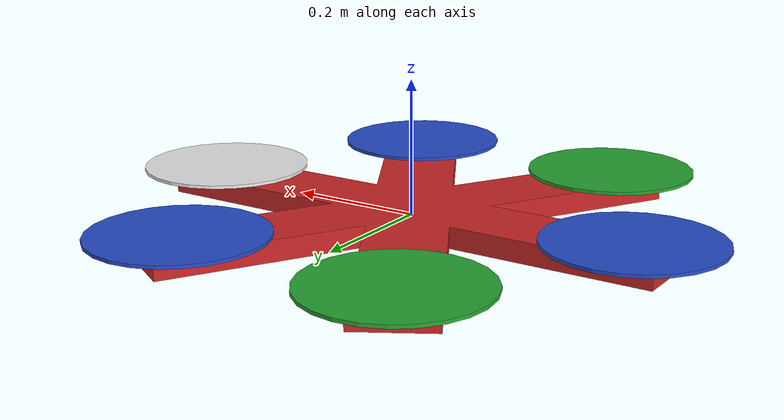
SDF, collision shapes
<sdf version='1.6'>
  <model name='hex_fl_rr'>
    <link name='base_link'>
      <pose frame=''>0 0 0 0 -0 0</pose>
      <inertial>
        <pose frame=''>0 0 0 0 -0 0</pose>
        <mass>2.0</mass>
        <inertia>
          <ixx>0.0818</ixx>
          <ixy>0</ixy>
          <ixz>0</ixz>
          <iyy>0.0818</iyy>
          <iyz>0</iyz>
          <izz>0.1633</izz>
        </inertia>
      </inertial>
      <collision name='base_link_inertia_collision'>
        <pose frame=''>0 0 0.015 -1.570795 -0 1.570795</pose>
        <geometry>
          <mesh>
            <scale>0.001055 0.001055 0.001055</scale>
            <uri>model://hex_fl_rr/meshes/hex_collision.stl</uri>
          </mesh>
        </geometry>
        <surface>
          <contact>
            <ode>
              <min_depth>0.001</min_depth>
              <max_vel>0</max_vel>
            </ode>
          </contact>
          <friction>
            <ode/>
          </friction>
        </surface>
      </collision>
      <visual name='base_link_inertia_visual'>
        <pose frame=''>0 0 0 -1.570795 -0 1.570795</pose>
        <geometry>
          <mesh>
            <scale>0.001055 0.001055 0.001055</scale>
            <uri>model://hex_fl_rr/meshes/hex_frame.stl</uri>
          </mesh>
        </geometry>
        <material>
          <script>
            <name>Gazebo/Red</name>
            <uri>file://media/materials/scripts/gazebo.material</uri>
          </script>
        </material>
      </visual>
      <gravity>1</gravity>
      <velocity_decay/>
    </link>
    <link name='/imu_link'>
      <pose frame=''>0 0 0 0 -0 0</pose>
      <inertial>
        <pose frame=''>0 0 0 0 -0 0</pose>
        <mass>0.015</mass>
        <inertia>
          <ixx>1e-05</ixx>
          <ixy>0</ixy>
          <ixz>0</ixz>
          <iyy>1e-05</iyy>
          <iyz>0</iyz>
          <izz>1e-05</izz>
        </inertia>
      </inertial>
    </link>
    <joint name='/imu_joint' type='revolute'>
      <child>/imu_link</child>
      <parent>base_link</parent>
      <axis>
        <xyz>1 0 0</xyz>
        <limit>
          <lower>0</lower>
          <upper>0</upper>
          <effort>0</effort>
          <velocity>0</velocity>
        </limit>
        <dynamics>
          <spring_reference>0</spring_reference>
          <spring_stiffness>0</spring_stiffness>
        </dynamics>
        <use_parent_model_frame>1</use_parent_model_frame>
      </axis>
    </joint>

    <link name='rotor_3'>
      <pose frame=''>0.175 -0.30311 0.022 0 -0 0</pose>
      <inertial>
        <pose frame=''>0 0 0 0 -0 0</pose>
        <mass>0.005</mass>
        <inertia>
          <ixx>9.75e-07</ixx>
          <ixy>0</ixy>
          <ixz>0</ixz>
          <iyy>0.000273104</iyy>
          <iyz>0</iyz>
          <izz>0.000274004</izz>
        </inertia>
      </inertial>
      <collision name='rotor_3_collision'>
        <pose frame=''>0 0 0 0 -0 0</pose>
        <geometry>
          <cylinder>
            <length>0.005</length>
            <radius>0.128</radius>
          </cylinder>
        </geometry>
        <surface>
          <contact>
            <ode/>
          </contact>
          <friction>
            <ode/>
          </friction>
        </surface>
      </collision>
      <visual name='rotor_3_visual'>
        <pose frame=''>0 0 0 0 -0 0</pose>
        <geometry>
          <mesh>
            <scale>1 1 1</scale>
            <uri>model://rotors_description/meshes/iris_prop_ccw.dae</uri>
          </mesh>
        </geometry>
        <material>
          <script>
            <name>Gazebo/Blue</name>
            <uri>file://media/materials/scripts/gazebo.material</uri>
          </script>
        </material>
      </visual>
      <gravity>1</gravity>
      <velocity_decay/>
    </link>
    <joint name='rotor_3_joint' type='revolute'>
      <child>rotor_3</child>
      <parent>base_link</parent>
      <axis>
        <xyz>0 0 1</xyz>
        <limit>
          <lower>-1e+16</lower>
          <upper>1e+16</upper>
        </limit>
        <dynamics>
          <spring_reference>0</spring_reference>
          <spring_stiffness>0</spring_stiffness>
        </dynamics>
        <use_parent_model_frame>1</use_parent_model_frame>
      </axis>
    </joint>
    <link name='rotor_4'>
      <pose frame=''>0.175 0.30311 0.022 0 -0 0</pose>
      <inertial>
        <pose frame=''>0 0 0 0 -0 0</pose>
        <mass>0.005</mass>
        <inertia>
          <ixx>9.75e-07</ixx>
          <ixy>0</ixy>
          <ixz>0</ixz>
          <iyy>0.000273104</iyy>
          <iyz>0</iyz>
          <izz>0.000274004</izz>
        </inertia>
      </inertial>
      <collision name='rotor_4_collision'>
        <pose frame=''>0 0 0 0 -0 0</pose>
        <geometry>
          <cylinder>
            <length>0.005</length>
            <radius>0.128</radius>
          </cylinder>
        </geometry>
        <surface>
          <contact>
            <ode/>
          </contact>
          <friction>
            <ode/>
          </friction>
        </surface>
      </collision>
      <visual name='rotor_4_visual'>
        <pose frame=''>0 0 0 0 -0 0</pose>
        <geometry>
          <mesh>
            <scale>1 1 1</scale>
            <uri>model://rotors_description/meshes/iris_prop_ccw.dae</uri>
          </mesh>
        </geometry>
        <material>
          <script>
            <name>Gazebo/Blue</name>
            <uri>file://media/materials/scripts/gazebo.material</uri>
          </script>
        </material>
      </visual>
      <gravity>1</gravity>
      <velocity_decay/>
    </link>
    <joint name='rotor_4_joint' type='revolute'>
      <child>rotor_4</child>
      <parent>base_link</parent>
      <axis>
        <xyz>0 0 1</xyz>
        <limit>
          <lower>-1e+16</lower>
          <upper>1e+16</upper>
        </limit>
        <dynamics>
          <spring_reference>0</spring_reference>
          <spring_stiffness>0</spring_stiffness>
        </dynamics>
        <use_parent_model_frame>1</use_parent_model_frame>
      </axis>
    </joint>
    <link name='rotor_1'>
      <pose frame=''>-0.35 0 0.022 0 -0 0</pose>
      <inertial>
        <pose frame=''>0 0 0 0 -0 0</pose>
        <mass>0.005</mass>
        <inertia>
          <ixx>9.75e-07</ixx>
          <ixy>0</ixy>
          <ixz>0</ixz>
          <iyy>0.000273104</iyy>
          <iyz>0</iyz>
          <izz>0.000274004</izz>
        </inertia>
      </inertial>
      <collision name='rotor_1_collision'>
        <pose frame=''>0 0 0 0 -0 0</pose>
        <geometry>
          <cylinder>
            <length>0.005</length>
            <radius>0.128</radius>
          </cylinder>
        </geometry>
        <surface>
          <contact>
            <ode/>
          </contact>
          <friction>
            <ode/>
          </friction>
        </surface>
      </collision>
      <visual name='rotor_1_visual'>
        <pose frame=''>0 0 0 0 -0 0</pose>
        <geometry>
          <mesh>
            <scale>1 1 1</scale>
            <uri>model://rotors_description/meshes/iris_prop_ccw.dae</uri>
          </mesh>
        </geometry>
        <material>
          <script>
            <name>Gazebo/Blue</name>
            <uri>file://media/materials/scripts/gazebo.material</uri>
          </script>
        </material>
      </visual>
      <gravity>1</gravity>
      <velocity_decay/>
    </link>
    <joint name='rotor_1_joint' type='revolute'>
      <child>rotor_1</child>
      <parent>base_link</parent>
      <axis>
        <xyz>0 0 1</xyz>
        <limit>
          <lower>-1e+16</lower>
          <upper>1e+16</upper>
        </limit>
        <dynamics>
          <spring_reference>0</spring_reference>
          <spring_stiffness>0</spring_stiffness>
        </dynamics>
        <use_parent_model_frame>1</use_parent_model_frame>
      </axis>
    </joint>
    <link name='rotor_5'>
      <pose frame=''>-0.175 -0.30311 0.022 0 -0 0</pose>
      <inertial>
        <pose frame=''>0 0 0 0 -0 0</pose>
        <mass>0.005</mass>
        <inertia>
          <ixx>9.75e-07</ixx>
          <ixy>0</ixy>
          <ixz>0</ixz>
          <iyy>0.000273104</iyy>
          <iyz>0</iyz>
          <izz>0.000274004</izz>
        </inertia>
      </inertial>
      <collision name='rotor_5_collision'>
        <pose frame=''>0 0 0 0 -0 0</pose>
        <geometry>
          <cylinder>
            <length>0.005</length>
            <radius>0.128</radius>
          </cylinder>
        </geometry>
        <surface>
          <contact>
            <ode/>
          </contact>
          <friction>
            <ode/>
          </friction>
        </surface>
      </collision>
      <visual name='rotor_5_visual'>
        <pose frame=''>0 0 0 0 -0 0</pose>
        <geometry>
          <mesh>
            <scale>1 1 1</scale>
            <uri>model://rotors_description/meshes/iris_prop_cw.dae</uri>
          </mesh>
        </geometry>
        <material>
          <script>
            <name>Gazebo/Green</name>
            <uri>file://media/materials/scripts/gazebo.material</uri>
          </script>
        </material>
      </visual>
      <gravity>1</gravity>
      <velocity_decay/>
    </link>
    <joint name='rotor_5_joint' type='revolute'>
      <child>rotor_5</child>
      <parent>base_link</parent>
      <axis>
        <xyz>0 0 1</xyz>
        <limit>
          <lower>-1e+16</lower>
          <upper>1e+16</upper>
        </limit>
        <dynamics>
          <spring_reference>0</spring_reference>
          <spring_stiffness>0</spring_stiffness>
        </dynamics>
        <use_parent_model_frame>1</use_parent_model_frame>
      </axis>
    </joint>
    <link name='rotor_2'>
      <pose frame=''>-0.175 0.30311 0.022 0 -0 0</pose>
      <inertial>
        <pose frame=''>0 0 0 0 -0 0</pose>
        <mass>0.005</mass>
        <inertia>
          <ixx>9.75e-07</ixx>
          <ixy>0</ixy>
          <ixz>0</ixz>
          <iyy>0.000273104</iyy>
          <iyz>0</iyz>
          <izz>0.000274004</izz>
        </inertia>
      </inertial>
      <collision name='rotor_2_collision'>
        <pose frame=''>0 0 0 0 -0 0</pose>
        <geometry>
          <cylinder>
            <length>0.005</length>
            <radius>0.128</radius>
          </cylinder>
        </geometry>
        <surface>
          <contact>
            <ode/>
          </contact>
          <friction>
            <ode/>
          </friction>
        </surface>
      </collision>
      <visual name='rotor_2_visual'>
        <pose frame=''>0 0 0 0 -0 0</pose>
        <geometry>
          <mesh>
            <scale>1 1 1</scale>
            <uri>model://rotors_description/meshes/iris_prop_cw.dae</uri>
          </mesh>
        </geometry>
        <material>
          <script>
            <name>Gazebo/Green</name>
            <uri>file://media/materials/scripts/gazebo.material</uri>
          </script>
        </material>
      </visual>
      <gravity>1</gravity>
      <velocity_decay/>
    </link>
    <joint name='rotor_2_joint' type='revolute'>
      <child>rotor_2</child>
      <parent>base_link</parent>
      <axis>
        <xyz>0 0 1</xyz>
        <limit>
          <lower>-1e+16</lower>
          <upper>1e+16</upper>
        </limit>
        <dynamics>
          <spring_reference>0</spring_reference>
          <spring_stiffness>0</spring_stiffness>
        </dynamics>
        <use_parent_model_frame>1</use_parent_model_frame>
      </axis>
    </joint>
    <link name='rotor_0'>
      <pose frame=''>0.35 0 0.022 0 -0 0</pose>
      <inertial>
        <pose frame=''>0 0 0 0 -0 0</pose>
        <mass>0.005</mass>
        <inertia>
          <ixx>9.75e-07</ixx>
          <ixy>0</ixy>
          <ixz>0</ixz>
          <iyy>0.000273104</iyy>
          <iyz>0</iyz>
          <izz>0.000274004</izz>
        </inertia>
      </inertial>
      <collision name='rotor_0_collision'>
        <pose frame=''>0 0 0 0 -0 0</pose>
        <geometry>
          <cylinder>
            <length>0.005</length>
            <radius>0.128</radius>
          </cylinder>
        </geometry>
        <surface>
          <contact>
            <ode/>
          </contact>
          <friction>
            <ode/>
          </friction>
        </surface>
      </collision>
      <visual name='rotor_0_visual'>
        <pose frame=''>0 0 0 0 -0 0</pose>
        <geometry>
          <mesh>
            <scale>1 1 1</scale>
            <uri>model://rotors_description/meshes/iris_prop_cw.dae</uri>
          </mesh>
        </geometry>
        <material>
          <script>
            <name>Gazebo/White</name>
            <uri>file://media/materials/scripts/gazebo.material</uri>
          </script>
        </material>
      </visual>
      <gravity>1</gravity>
      <velocity_decay/>
    </link>
    <joint name='rotor_0_joint' type='revolute'>
      <child>rotor_0</child>
      <parent>base_link</parent>
      <axis>
        <xyz>0 0 1</xyz>
        <limit>
          <lower>-1e+16</lower>
          <upper>1e+16</upper>
        </limit>
        <dynamics>
          <spring_reference>0</spring_reference>
          <spring_stiffness>0</spring_stiffness>
        </dynamics>
        <use_parent_model_frame>1</use_parent_model_frame>
      </axis>
    </joint>

    <plugin name='rosbag' filename='libgazebo_multirotor_base_plugin.so'>
      <robotNamespace>hex_fl_rr</robotNamespace>
      <linkName>base_link</linkName>
      <rotorVelocitySlowdownSim>10</rotorVelocitySlowdownSim>
    </plugin>
    <plugin name='front_motor_model' filename='libgazebo_motor_model.so'>
      <robotNamespace>hex_fl_rr</robotNamespace>
      <jointName>rotor_0_joint</jointName>
      <linkName>rotor_0</linkName>
      <turningDirection>cw</turningDirection>
      <timeConstantUp>0.0125</timeConstantUp>
      <timeConstantDown>0.025</timeConstantDown>
      <maxRotVelocity>1100</maxRotVelocity>
      <motorConstant>8.54858e-06</motorConstant>
      <momentConstant>0.06</momentConstant>
      <commandSubTopic>/gazebo/command/motor_speed</commandSubTopic>
      <motorNumber>0</motorNumber>
      <rotorDragCoefficient>0.000175</rotorDragCoefficient>
      <rollingMomentCoefficient>1e-06</rollingMomentCoefficient>
      <motorSpeedPubTopic>/motor_speed/0</motorSpeedPubTopic>
      <rotorVelocitySlowdownSim>10</rotorVelocitySlowdownSim>
    </plugin>
    <plugin name='back_motor_model' filename='libgazebo_motor_model.so'>
      <robotNamespace>hex_fl_rr</robotNamespace>
      <jointName>rotor_1_joint</jointName>
      <linkName>rotor_1</linkName>
      <turningDirection>ccw</turningDirection>
      <timeConstantUp>0.0125</timeConstantUp>
      <timeConstantDown>0.025</timeConstantDown>
      <maxRotVelocity>1100</maxRotVelocity>
      <motorConstant>8.54858e-06</motorConstant>
      <momentConstant>0.06</momentConstant>
      <commandSubTopic>/gazebo/command/motor_speed</commandSubTopic>
      <motorNumber>1</motorNumber>
      <rotorDragCoefficient>0.000175</rotorDragCoefficient>
      <rollingMomentCoefficient>1e-06</rollingMomentCoefficient>
      <motorSpeedPubTopic>/motor_speed/1</motorSpeedPubTopic>
      <rotorVelocitySlowdownSim>10</rotorVelocitySlowdownSim>
    </plugin>
    <plugin name='back_left_motor_model' filename='libgazebo_motor_model.so'>
      <robotNamespace>hex_fl_rr</robotNamespace>
      <jointName>rotor_2_joint</jointName>
      <linkName>rotor_2</linkName>
      <turningDirection>cw</turningDirection>
      <timeConstantUp>0.0125</timeConstantUp>
      <timeConstantDown>0.025</timeConstantDown>
      <maxRotVelocity>1100</maxRotVelocity>
      <motorConstant>8.54858e-06</motorConstant>
      <momentConstant>0.06</momentConstant>
      <commandSubTopic>/gazebo/command/motor_speed</commandSubTopic>
      <motorNumber>2</motorNumber>
      <rotorDragCoefficient>0.000175</rotorDragCoefficient>
      <rollingMomentCoefficient>1e-06</rollingMomentCoefficient>
      <motorSpeedPubTopic>/motor_speed/2</motorSpeedPubTopic>
      <rotorVelocitySlowdownSim>10</rotorVelocitySlowdownSim>
    </plugin>
    <plugin name='top_right_motor_model' filename='libgazebo_motor_model.so'>
      <robotNamespace>hex_fl_rr</robotNamespace>
      <jointName>rotor_3_joint</jointName>
      <linkName>rotor_3</linkName>
      <turningDirection>ccw</turningDirection>
      <timeConstantUp>0.0125</timeConstantUp>
      <timeConstantDown>0.025</timeConstantDown>
      <maxRotVelocity>1100</maxRotVelocity>
      <motorConstant>8.54858e-06</motorConstant>
      <momentConstant>0.06</momentConstant>
      <commandSubTopic>/gazebo/command/motor_speed</commandSubTopic>
      <motorNumber>3</motorNumber>
      <rotorDragCoefficient>0.000175</rotorDragCoefficient>
      <rollingMomentCoefficient>1e-06</rollingMomentCoefficient>
      <motorSpeedPubTopic>/motor_speed/3</motorSpeedPubTopic>
      <rotorVelocitySlowdownSim>10</rotorVelocitySlowdownSim>
    </plugin>
    <plugin name='top_left_motor_model' filename='libgazebo_motor_model.so'>
      <robotNamespace>hex_fl_rr</robotNamespace>
      <jointName>rotor_4_joint</jointName>
      <linkName>rotor_4</linkName>
      <turningDirection>ccw</turningDirection>
      <timeConstantUp>0.0125</timeConstantUp>
      <timeConstantDown>0.025</timeConstantDown>
      <maxRotVelocity>1100</maxRotVelocity>
      <motorConstant>8.54858e-06</motorConstant>
      <momentConstant>0.06</momentConstant>
      <commandSubTopic>/gazebo/command/motor_speed</commandSubTopic>
      <motorNumber>4</motorNumber>
      <rotorDragCoefficient>0.000175</rotorDragCoefficient>
      <rollingMomentCoefficient>1e-06</rollingMomentCoefficient>
      <motorSpeedPubTopic>/motor_speed/4</motorSpeedPubTopic>
      <rotorVelocitySlowdownSim>10</rotorVelocitySlowdownSim>
    </plugin>
    <plugin name='back_right_motor_model' filename='libgazebo_motor_model.so'>
      <robotNamespace>hex_fl_rr</robotNamespace>
      <jointName>rotor_5_joint</jointName>
      <linkName>rotor_5</linkName>
      <turningDirection>cw</turningDirection>
      <timeConstantUp>0.0125</timeConstantUp>
      <timeConstantDown>0.025</timeConstantDown>
      <maxRotVelocity>1100</maxRotVelocity>
      <motorConstant>8.54858e-06</motorConstant>
      <momentConstant>0.06</momentConstant>
      <commandSubTopic>/gazebo/command/motor_speed</commandSubTopic>
      <motorNumber>5</motorNumber>
      <rotorDragCoefficient>0.000175</rotorDragCoefficient>
      <rollingMomentCoefficient>1e-06</rollingMomentCoefficient>
      <motorSpeedPubTopic>/motor_speed/5</motorSpeedPubTopic>
      <rotorVelocitySlowdownSim>10</rotorVelocitySlowdownSim>
    </plugin>

    <plugin name='gps_plugin' filename='libgazebo_gps_plugin.so'>
      <robotNamespace>hex_fl_rr</robotNamespace>
      <gpsNoise>1</gpsNoise>
    </plugin>
    <plugin name='magnetometer_plugin' filename='libgazebo_magnetometer_plugin.so'>
      <robotNamespace>hex_fl_rr</robotNamespace>
      <pubRate>20</pubRate>
      <noiseDensity>0.0004</noiseDensity>
      <randomWalk>6.4e-06</randomWalk>
      <biasCorrelationTime>600</biasCorrelationTime>
      <magTopic>/mag</magTopic>
    </plugin>
    <plugin name='barometer_plugin' filename='libgazebo_barometer_plugin.so'>
      <robotNamespace>hex_fl_rr</robotNamespace>
      <pubRate>10</pubRate>
      <baroTopic>/baro</baroTopic>
    </plugin>
    <plugin name='mavlink_interface' filename='libgazebo_mavlink_interface.so'>
      <robotNamespace>hex_fl_rr</robotNamespace>
      <imuSubTopic>/imu</imuSubTopic>
      <gpsSubTopic>/gps</gpsSubTopic>
      <magSubTopic>/mag</magSubTopic>
      <baroSubTopic>/baro</baroSubTopic>
      <mavlink_addr>INADDR_ANY</mavlink_addr>
      <mavlink_udp_port>14075</mavlink_udp_port>
      <mavlink_tcp_port>4575</mavlink_tcp_port>
      <serialEnabled>0</serialEnabled>
      <serialDevice>/dev/ttyACM0</serialDevice>
      <baudRate>921600</baudRate>
      <qgc_addr>INADDR_ANY</qgc_addr>
      <qgc_udp_port>14565</qgc_udp_port>
      <sdk_addr>INADDR_ANY</sdk_addr>
      <sdk_udp_port>13665</sdk_udp_port>
      <hil_mode>0</hil_mode>
      <hil_state_level>0</hil_state_level>
      <vehicle_is_tailsitter>0</vehicle_is_tailsitter>
      <send_vision_estimation>1</send_vision_estimation>
      <send_odometry>0</send_odometry>
      <enable_lockstep>1</enable_lockstep>
      <use_tcp>1</use_tcp>
      <motorSpeedCommandPubTopic>/gazebo/command/motor_speed</motorSpeedCommandPubTopic>
      <control_channels>
        <channel name='rotor0'>
          <input_index>0</input_index>
          <input_offset>0</input_offset>
          <input_scaling>1000</input_scaling>
          <zero_position_disarmed>0</zero_position_disarmed>
          <zero_position_armed>100</zero_position_armed>
          <joint_control_type>velocity</joint_control_type>
        </channel>
        <channel name='rotor1'>
          <input_index>1</input_index>
          <input_offset>0</input_offset>
          <input_scaling>1000</input_scaling>
          <zero_position_disarmed>0</zero_position_disarmed>
          <zero_position_armed>100</zero_position_armed>
          <joint_control_type>velocity</joint_control_type>
        </channel>
        <channel name='rotor2'>
          <input_index>2</input_index>
          <input_offset>0</input_offset>
          <input_scaling>1000</input_scaling>
          <zero_position_disarmed>0</zero_position_disarmed>
          <zero_position_armed>100</zero_position_armed>
          <joint_control_type>velocity</joint_control_type>
        </channel>
        <channel name='rotor3'>
          <input_index>3</input_index>
          <input_offset>0</input_offset>
          <input_scaling>1000</input_scaling>
          <zero_position_disarmed>0</zero_position_disarmed>
          <zero_position_armed>100</zero_position_armed>
          <joint_control_type>velocity</joint_control_type>
        </channel>
        <channel name='rotor4'>
          <input_index>4</input_index>
          <input_offset>0</input_offset>
          <input_scaling>1000</input_scaling>
          <zero_position_disarmed>0</zero_position_disarmed>
          <zero_position_armed>100</zero_position_armed>
          <joint_control_type>velocity</joint_control_type>
        </channel>
        <channel name='rotor5'>
          <input_index>5</input_index>
          <input_offset>0</input_offset>
          <input_scaling>1000</input_scaling>
          <zero_position_disarmed>0</zero_position_disarmed>
          <zero_position_armed>100</zero_position_armed>
          <joint_control_type>velocity</joint_control_type>
        </channel>
      </control_channels>
    </plugin>
    <static>0</static>
    <plugin name='rotors_gazebo_imu_plugin' filename='libgazebo_imu_plugin.so'>
      <robotNamespace>hex_fl_rr</robotNamespace>
      <linkName>/imu_link</linkName>
      <imuTopic>/imu</imuTopic>
      <gyroscopeNoiseDensity>0.0003394</gyroscopeNoiseDensity>
      <gyroscopeRandomWalk>3.8785e-05</gyroscopeRandomWalk>
      <gyroscopeBiasCorrelationTime>1000.0</gyroscopeBiasCorrelationTime>
      <gyroscopeTurnOnBiasSigma>0.0087</gyroscopeTurnOnBiasSigma>
      <accelerometerNoiseDensity>0.004</accelerometerNoiseDensity>
      <accelerometerRandomWalk>0.006</accelerometerRandomWalk>
      <accelerometerBiasCorrelationTime>300.0</accelerometerBiasCorrelationTime>
      <accelerometerTurnOnBiasSigma>0.196</accelerometerTurnOnBiasSigma>
    </plugin>

  </model>
</sdf>
